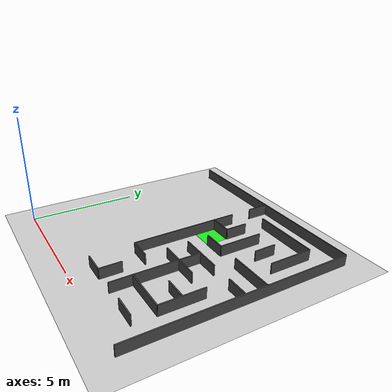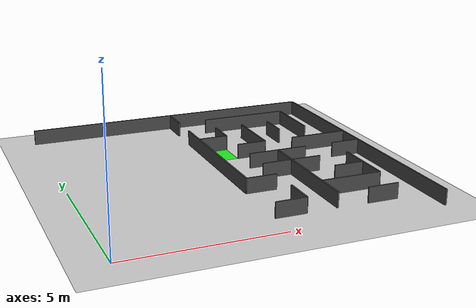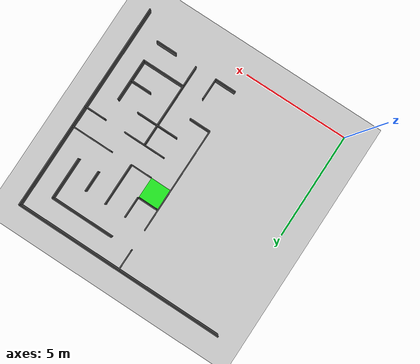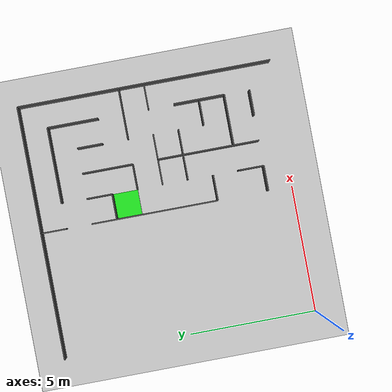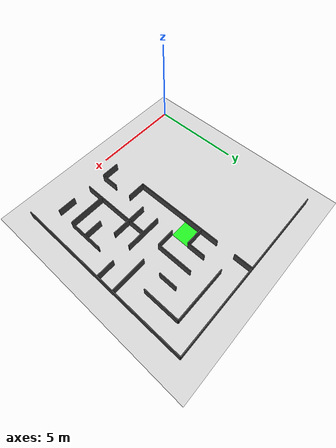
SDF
<sdf version="1.7">
 <world name="default">
  <model name="ground_plane">
   <static>1</static>
   <link name="link">
    <collision name="collision">
     <geometry><plane><normal>0 0 1</normal><size>100 100</size></plane></geometry>
     <surface>
      <contact><collide_bitmask>65535</collide_bitmask></contact>
      <friction><ode><mu>100</mu><mu2>50</mu2></ode></friction>
     </surface>
    </collision>
    <visual name="visual">
     <geometry><plane><normal>0 0 1</normal><size>100 100</size></plane></geometry>
     <material>
      <script><uri>file://media/materials/scripts/gazebo.material</uri><name>Gazebo/Grey</name></script>
     </material>
    </visual>
   </link>
  </model>
  <model name="end_square">
   <link name="link">
    <inertial>
     <mass>0.00384767</mass>
     <inertia>
      <ixx>0.000320644</ixx>
      <ixy>0</ixy>
      <ixz>0</ixz>
      <iyy>0.000320644</iyy>
      <iyz>0</iyz>
      <izz>0.000641278</izz>
     </inertia>
    </inertial>
    <visual name="visual">
     <geometry><box><size>1 1 0.001</size></box></geometry>
     <material>
      <ambient>0 1 0 0.8</ambient>
      <diffuse>0 1 0 0.8</diffuse>
      <specular>0 0 0 0</specular>
      <emissive>0 1 0 1</emissive>
     </material>
    </visual>
    <collision name="collision"><geometry><box><size>0 0 0</size></box></geometry></collision>
   </link>
   <static>1</static>
   <pose>5.5 6.5 0.001 0 -0 0</pose>
  </model>
  <model name="maze_wall_10_5_10">
   <link name="link">
    <inertial>
     <mass>1</mass>
     <inertia>
      <ixx>0.166667</ixx>
      <ixy>0</ixy>
      <ixz>0</ixz>
      <iyy>0.166667</iyy>
      <iyz>0</iyz>
      <izz>0.166667</izz>
     </inertia>
    </inertial>
    <pose>0 0 0.25 0 -0 0</pose>
    <visual name="visual">
     <geometry><box><size>10 0.05 0.5</size></box></geometry>
     <material>
      <script><uri>file://media/materials/scripts/gazebo.material</uri><name>Gazebo/DarkGrey</name></script>
     </material>
    </visual>
    <collision name="collision"><geometry><box><size>10 0.05 0.5</size></box></geometry></collision>
   </link>
   <static>1</static>
   <pose>5 10 0 0 -0 0</pose>
  </model>
  <model name="maze_wall_10_10_5_h">
   <link name="link">
    <inertial>
     <mass>1</mass>
     <inertia>
      <ixx>0.166667</ixx>
      <ixy>0</ixy>
      <ixz>0</ixz>
      <iyy>0.166667</iyy>
      <iyz>0</iyz>
      <izz>0.166667</izz>
     </inertia>
    </inertial>
    <pose>0 0 0.25 0 -0 0</pose>
    <visual name="visual">
     <geometry><box><size>10 0.05 0.5</size></box></geometry>
     <material>
      <script><uri>file://media/materials/scripts/gazebo.material</uri><name>Gazebo/DarkGrey</name></script>
     </material>
    </visual>
    <collision name="collision"><geometry><box><size>10 0.05 0.5</size></box></geometry></collision>
   </link>
   <static>1</static>
   <pose>10 5 0 0 -0 1.57</pose>
  </model>
  <model name="maze_wall_4_5_5,5_h">
   <link name="link">
    <inertial>
     <mass>1</mass>
     <inertia>
      <ixx>0.166667</ixx>
      <ixy>0</ixy>
      <ixz>0</ixz>
      <iyy>0.166667</iyy>
      <iyz>0</iyz>
      <izz>0.166667</izz>
     </inertia>
    </inertial>
    <pose>0 0 0.25 0 -0 0</pose>
    <visual name="visual">
     <geometry><box><size>5 0.05 0.5</size></box></geometry>
     <material>
      <script><uri>file://media/materials/scripts/gazebo.material</uri><name>Gazebo/DarkGrey</name></script>
     </material>
    </visual>
    <collision name="collision"><geometry><box><size>5 0.05 0.5</size></box></geometry></collision>
   </link>
   <static>1</static>
   <pose>5 5.5 0 0 -0 1.57</pose>
  </model>
  <model name="maze_wall_3_7,5_9">
   <link name="link">
    <inertial>
     <mass>1</mass>
     <inertia>
      <ixx>0.166667</ixx>
      <ixy>0</ixy>
      <ixz>0</ixz>
      <iyy>0.166667</iyy>
      <iyz>0</iyz>
      <izz>0.166667</izz>
     </inertia>
    </inertial>
    <pose>0 0 0.25 0 -0 0</pose>
    <visual name="visual">
     <geometry><box><size>3 0.05 0.5</size></box></geometry>
     <material>
      <script><uri>file://media/materials/scripts/gazebo.material</uri><name>Gazebo/DarkGrey</name></script>
     </material>
    </visual>
    <collision name="collision"><geometry><box><size>3 0.05 0.5</size></box></geometry></collision>
   </link>
   <static>1</static>
   <pose>7.5 9 0 0 -0 0</pose>
  </model>
  <model name="maze_wall_2_9_8_h">
   <link name="link">
    <inertial>
     <mass>1</mass>
     <inertia>
      <ixx>0.166667</ixx>
      <ixy>0</ixy>
      <ixz>0</ixz>
      <iyy>0.166667</iyy>
      <iyz>0</iyz>
      <izz>0.166667</izz>
     </inertia>
    </inertial>
    <pose>0 0 0.25 0 -0 0</pose>
    <visual name="visual">
     <geometry><box><size>2 0.05 0.5</size></box></geometry>
     <material>
      <script><uri>file://media/materials/scripts/gazebo.material</uri><name>Gazebo/DarkGrey</name></script>
     </material>
    </visual>
    <collision name="collision"><geometry><box><size>2 0.05 0.5</size></box></geometry></collision>
   </link>
   <static>1</static>
   <pose>9 8 0 0 -0 1.57</pose>
  </model>
  <model name="maze_wall_2_7_7_h">
   <link name="link">
    <inertial>
     <mass>1</mass>
     <inertia>
      <ixx>0.166667</ixx>
      <ixy>0</ixy>
      <ixz>0</ixz>
      <iyy>0.166667</iyy>
      <iyz>0</iyz>
      <izz>0.166667</izz>
     </inertia>
    </inertial>
    <pose>0 0 0.25 0 -0 0</pose>
    <visual name="visual">
     <geometry><box><size>2 0.05 0.5</size></box></geometry>
     <material>
      <script><uri>file://media/materials/scripts/gazebo.material</uri><name>Gazebo/DarkGrey</name></script>
     </material>
    </visual>
    <collision name="collision"><geometry><box><size>2 0.05 0.5</size></box></geometry></collision>
   </link>
   <static>1</static>
   <pose>7 7 0 0 -0 1.57</pose>
  </model>
  <model name="maze_wall_1_6,5_6">
   <link name="link">
    <inertial>
     <mass>1</mass>
     <inertia>
      <ixx>0.166667</ixx>
      <ixy>0</ixy>
      <ixz>0</ixz>
      <iyy>0.166667</iyy>
      <iyz>0</iyz>
      <izz>0.166667</izz>
     </inertia>
    </inertial>
    <pose>0 0 0.25 0 -0 0</pose>
    <visual name="visual">
     <geometry><box><size>1 0.05 0.5</size></box></geometry>
     <material>
      <script><uri>file://media/materials/scripts/gazebo.material</uri><name>Gazebo/DarkGrey</name></script>
     </material>
    </visual>
    <collision name="collision"><geometry><box><size>1 0.05 0.5</size></box></geometry></collision>
   </link>
   <static>1</static>
   <pose>6.5 6 0 0 -0 0</pose>
  </model>
  <model name="maze_wall_1_5,5_3">
   <link name="link">
    <inertial>
     <mass>1</mass>
     <inertia>
      <ixx>0.166667</ixx>
      <ixy>0</ixy>
      <ixz>0</ixz>
      <iyy>0.166667</iyy>
      <iyz>0</iyz>
      <izz>0.166667</izz>
     </inertia>
    </inertial>
    <pose>0 0 0.25 0 -0 0</pose>
    <visual name="visual">
     <geometry><box><size>1 0.05 0.5</size></box></geometry>
     <material>
      <script><uri>file://media/materials/scripts/gazebo.material</uri><name>Gazebo/DarkGrey</name></script>
     </material>
    </visual>
    <collision name="collision"><geometry><box><size>1 0.05 0.5</size></box></geometry></collision>
   </link>
   <static>1</static>
   <pose>5.5 3 0 0 -0 0</pose>
  </model>
  <model name="maze_wall_1_8_7,5_h">
   <link name="link">
    <inertial>
     <mass>1</mass>
     <inertia>
      <ixx>0.166667</ixx>
      <ixy>0</ixy>
      <ixz>0</ixz>
      <iyy>0.166667</iyy>
      <iyz>0</iyz>
      <izz>0.166667</izz>
     </inertia>
    </inertial>
    <pose>0 0 0.25 0 -0 0</pose>
    <visual name="visual">
     <geometry><box><size>1 0.05 0.5</size></box></geometry>
     <material>
      <script><uri>file://media/materials/scripts/gazebo.material</uri><name>Gazebo/DarkGrey</name></script>
     </material>
    </visual>
    <collision name="collision"><geometry><box><size>1 0.05 0.5</size></box></geometry></collision>
   </link>
   <static>1</static>
   <pose>8 7.5 0 0 -0 1.57</pose>
  </model>
  <model name="maze_wall_2_7_5">
   <link name="link">
    <inertial>
     <mass>1</mass>
     <inertia>
      <ixx>0.166667</ixx>
      <ixy>0</ixy>
      <ixz>0</ixz>
      <iyy>0.166667</iyy>
      <iyz>0</iyz>
      <izz>0.166667</izz>
     </inertia>
    </inertial>
    <pose>0 0 0.25 0 -0 0</pose>
    <visual name="visual">
     <geometry><box><size>2 0.05 0.5</size></box></geometry>
     <material>
      <script><uri>file://media/materials/scripts/gazebo.material</uri><name>Gazebo/DarkGrey</name></script>
     </material>
    </visual>
    <collision name="collision"><geometry><box><size>2 0.05 0.5</size></box></geometry></collision>
   </link>
   <static>1</static>
   <pose>7 5 0 0 -0 0</pose>
  </model>
  <model name="maze_wall_1_5_9,5_h">
   <link name="link">
    <inertial>
     <mass>1</mass>
     <inertia>
      <ixx>0.166667</ixx>
      <ixy>0</ixy>
      <ixz>0</ixz>
      <iyy>0.166667</iyy>
      <iyz>0</iyz>
      <izz>0.166667</izz>
     </inertia>
    </inertial>
    <pose>0 0 0.25 0 -0 0</pose>
    <visual name="visual">
     <geometry><box><size>1 0.05 0.5</size></box></geometry>
     <material>
      <script><uri>file://media/materials/scripts/gazebo.material</uri><name>Gazebo/DarkGrey</name></script>
     </material>
    </visual>
    <collision name="collision"><geometry><box><size>1 0.05 0.5</size></box></geometry></collision>
   </link>
   <static>1</static>
   <pose>5 9.5 0 0 -0 1.57</pose>
  </model>
  <model name="maze_wall_2_7_4">
   <link name="link">
    <inertial>
     <mass>1</mass>
     <inertia>
      <ixx>0.166667</ixx>
      <ixy>0</ixy>
      <ixz>0</ixz>
      <iyy>0.166667</iyy>
      <iyz>0</iyz>
      <izz>0.166667</izz>
     </inertia>
    </inertial>
    <pose>0 0 0.25 0 -0 0</pose>
    <visual name="visual">
     <geometry><box><size>2 0.05 0.5</size></box></geometry>
     <material>
      <script><uri>file://media/materials/scripts/gazebo.material</uri><name>Gazebo/DarkGrey</name></script>
     </material>
    </visual>
    <collision name="collision"><geometry><box><size>2 0.05 0.5</size></box></geometry></collision>
   </link>
   <static>1</static>
   <pose>7 4 0 0 -0 0</pose>
  </model>
  <model name="maze_wall_1_6_1,5_h">
   <link name="link">
    <inertial>
     <mass>1</mass>
     <inertia>
      <ixx>0.166667</ixx>
      <ixy>0</ixy>
      <ixz>0</ixz>
      <iyy>0.166667</iyy>
      <iyz>0</iyz>
      <izz>0.166667</izz>
     </inertia>
    </inertial>
    <pose>0 0 0.25 0 -0 0</pose>
    <visual name="visual">
     <geometry><box><size>1 0.05 0.5</size></box></geometry>
     <material>
      <script><uri>file://media/materials/scripts/gazebo.material</uri><name>Gazebo/DarkGrey</name></script>
     </material>
    </visual>
    <collision name="collision"><geometry><box><size>1 0.05 0.5</size></box></geometry></collision>
   </link>
   <static>1</static>
   <pose>6 1.5 0 0 -0 1.57</pose>
  </model>
  <model name="maze_wall_1_5,5_1">
   <link name="link">
    <inertial>
     <mass>1</mass>
     <inertia>
      <ixx>0.166667</ixx>
      <ixy>0</ixy>
      <ixz>0</ixz>
      <iyy>0.166667</iyy>
      <iyz>0</iyz>
      <izz>0.166667</izz>
     </inertia>
    </inertial>
    <pose>0 0 0.25 0 -0 0</pose>
    <visual name="visual">
     <geometry><box><size>1 0.05 0.5</size></box></geometry>
     <material>
      <script><uri>file://media/materials/scripts/gazebo.material</uri><name>Gazebo/DarkGrey</name></script>
     </material>
    </visual>
    <collision name="collision"><geometry><box><size>1 0.05 0.5</size></box></geometry></collision>
   </link>
   <static>1</static>
   <pose>5.5 1 0 0 -0 0</pose>
  </model>
  <model name="maze_wall_1_5,5_7">
   <link name="link">
    <inertial>
     <mass>1</mass>
     <inertia>
      <ixx>0.166667</ixx>
      <ixy>0</ixy>
      <ixz>0</ixz>
      <iyy>0.166667</iyy>
      <iyz>0</iyz>
      <izz>0.166667</izz>
     </inertia>
    </inertial>
    <pose>0 0 0.25 0 -0 0</pose>
    <visual name="visual">
     <geometry><box><size>1 0.05 0.5</size></box></geometry>
     <material>
      <script><uri>file://media/materials/scripts/gazebo.material</uri><name>Gazebo/DarkGrey</name></script>
     </material>
    </visual>
    <collision name="collision"><geometry><box><size>1 0.05 0.5</size></box></geometry></collision>
   </link>
   <static>1</static>
   <pose>5.5 7 0 0 -0 0</pose>
  </model>
  <model name="maze_wall_1_6_7,5_h">
   <link name="link">
    <inertial>
     <mass>1</mass>
     <inertia>
      <ixx>0.166667</ixx>
      <ixy>0</ixy>
      <ixz>0</ixz>
      <iyy>0.166667</iyy>
      <iyz>0</iyz>
      <izz>0.166667</izz>
     </inertia>
    </inertial>
    <pose>0 0 0.25 0 -0 0</pose>
    <visual name="visual">
     <geometry><box><size>1 0.05 0.5</size></box></geometry>
     <material>
      <script><uri>file://media/materials/scripts/gazebo.material</uri><name>Gazebo/DarkGrey</name></script>
     </material>
    </visual>
    <collision name="collision"><geometry><box><size>1 0.05 0.5</size></box></geometry></collision>
   </link>
   <static>1</static>
   <pose>6 7.5 0 0 -0 1.57</pose>
  </model>
  <model name="maze_wall_4_7_3_h">
   <link name="link">
    <inertial>
     <mass>1</mass>
     <inertia>
      <ixx>0.166667</ixx>
      <ixy>0</ixy>
      <ixz>0</ixz>
      <iyy>0.166667</iyy>
      <iyz>0</iyz>
      <izz>0.166667</izz>
     </inertia>
    </inertial>
    <pose>0 0 0.25 0 -0 0</pose>
    <visual name="visual">
     <geometry><box><size>4 0.05 0.5</size></box></geometry>
     <material>
      <script><uri>file://media/materials/scripts/gazebo.material</uri><name>Gazebo/DarkGrey</name></script>
     </material>
    </visual>
    <collision name="collision"><geometry><box><size>4 0.05 0.5</size></box></geometry></collision>
   </link>
   <static>1</static>
   <pose>7 3 0 0 -0 1.57</pose>
  </model>
  <model name="maze_wall_2_9_6">
   <link name="link">
    <inertial>
     <mass>1</mass>
     <inertia>
      <ixx>0.166667</ixx>
      <ixy>0</ixy>
      <ixz>0</ixz>
      <iyy>0.166667</iyy>
      <iyz>0</iyz>
      <izz>0.166667</izz>
     </inertia>
    </inertial>
    <pose>0 0 0.25 0 -0 0</pose>
    <visual name="visual">
     <geometry><box><size>2 0.05 0.5</size></box></geometry>
     <material>
      <script><uri>file://media/materials/scripts/gazebo.material</uri><name>Gazebo/DarkGrey</name></script>
     </material>
    </visual>
    <collision name="collision"><geometry><box><size>2 0.05 0.5</size></box></geometry></collision>
   </link>
   <static>1</static>
   <pose>9 6 0 0 -0 0</pose>
  </model>
  <model name="maze_wall_1_8,5_1">
   <link name="link">
    <inertial>
     <mass>1</mass>
     <inertia>
      <ixx>0.166667</ixx>
      <ixy>0</ixy>
      <ixz>0</ixz>
      <iyy>0.166667</iyy>
      <iyz>0</iyz>
      <izz>0.166667</izz>
     </inertia>
    </inertial>
    <pose>0 0 0.25 0 -0 0</pose>
    <visual name="visual">
     <geometry><box><size>1 0.05 0.5</size></box></geometry>
     <material>
      <script><uri>file://media/materials/scripts/gazebo.material</uri><name>Gazebo/DarkGrey</name></script>
     </material>
    </visual>
    <collision name="collision"><geometry><box><size>1 0.05 0.5</size></box></geometry></collision>
   </link>
   <static>1</static>
   <pose>8.5 1 0 0 -0 0</pose>
  </model>
  <model name="maze_wall_2_8_2">
   <link name="link">
    <inertial>
     <mass>1</mass>
     <inertia>
      <ixx>0.166667</ixx>
      <ixy>0</ixy>
      <ixz>0</ixz>
      <iyy>0.166667</iyy>
      <iyz>0</iyz>
      <izz>0.166667</izz>
     </inertia>
    </inertial>
    <pose>0 0 0.25 0 -0 0</pose>
    <visual name="visual">
     <geometry><box><size>2 0.05 0.5</size></box></geometry>
     <material>
      <script><uri>file://media/materials/scripts/gazebo.material</uri><name>Gazebo/DarkGrey</name></script>
     </material>
    </visual>
    <collision name="collision"><geometry><box><size>2 0.05 0.5</size></box></geometry></collision>
   </link>
   <static>1</static>
   <pose>8 2 0 0 -0 0</pose>
  </model>
  <model name="maze_wall_2_9_3_h">
   <link name="link">
    <inertial>
     <mass>1</mass>
     <inertia>
      <ixx>0.166667</ixx>
      <ixy>0</ixy>
      <ixz>0</ixz>
      <iyy>0.166667</iyy>
      <iyz>0</iyz>
      <izz>0.166667</izz>
     </inertia>
    </inertial>
    <pose>0 0 0.25 0 -0 0</pose>
    <visual name="visual">
     <geometry><box><size>2 0.05 0.5</size></box></geometry>
     <material>
      <script><uri>file://media/materials/scripts/gazebo.material</uri><name>Gazebo/DarkGrey</name></script>
     </material>
    </visual>
    <collision name="collision"><geometry><box><size>2 0.05 0.5</size></box></geometry></collision>
   </link>
   <static>1</static>
   <pose>9 3 0 0 -0 1.57</pose>
  </model>
  <model name="maze_wall_1_8,5_3">
   <link name="link">
    <inertial>
     <mass>1</mass>
     <inertia>
      <ixx>0.166667</ixx>
      <ixy>0</ixy>
      <ixz>0</ixz>
      <iyy>0.166667</iyy>
      <iyz>0</iyz>
      <izz>0.166667</izz>
     </inertia>
    </inertial>
    <pose>0 0 0.25 0 -0 0</pose>
    <visual name="visual">
     <geometry><box><size>1 0.05 0.5</size></box></geometry>
     <material>
      <script><uri>file://media/materials/scripts/gazebo.material</uri><name>Gazebo/DarkGrey</name></script>
     </material>
    </visual>
    <collision name="collision"><geometry><box><size>1 0.05 0.5</size></box></geometry></collision>
   </link>
   <static>1</static>
   <pose>8.5 3 0 0 -0 0</pose>
  </model>
  <model name="maze_wall_1_9,5_5">
   <link name="link">
    <inertial>
     <mass>1</mass>
     <inertia>
      <ixx>0.166667</ixx>
      <ixy>0</ixy>
      <ixz>0</ixz>
      <iyy>0.166667</iyy>
      <iyz>0</iyz>
      <izz>0.166667</izz>
     </inertia>
    </inertial>
    <pose>0 0 0.25 0 -0 0</pose>
    <visual name="visual">
     <geometry><box><size>1 0.05 0.5</size></box></geometry>
     <material>
      <script><uri>file://media/materials/scripts/gazebo.material</uri><name>Gazebo/DarkGrey</name></script>
     </material>
    </visual>
    <collision name="collision"><geometry><box><size>1 0.05 0.5</size></box></geometry></collision>
   </link>
   <static>1</static>
   <pose>9.5 5 0 0 -0 0</pose>
  </model>
 </world>
</sdf>
